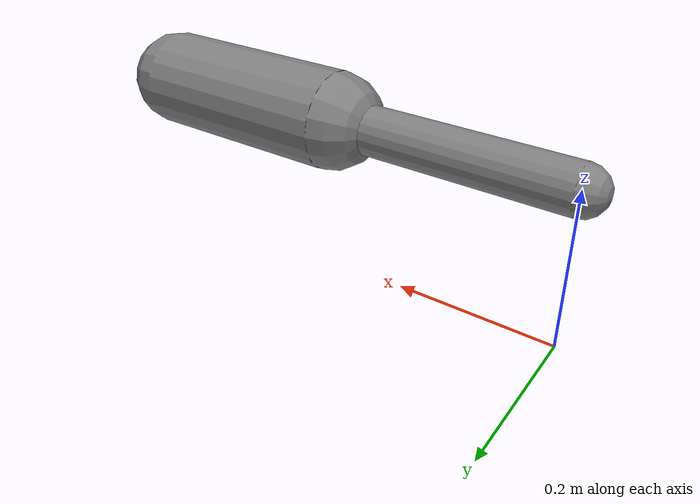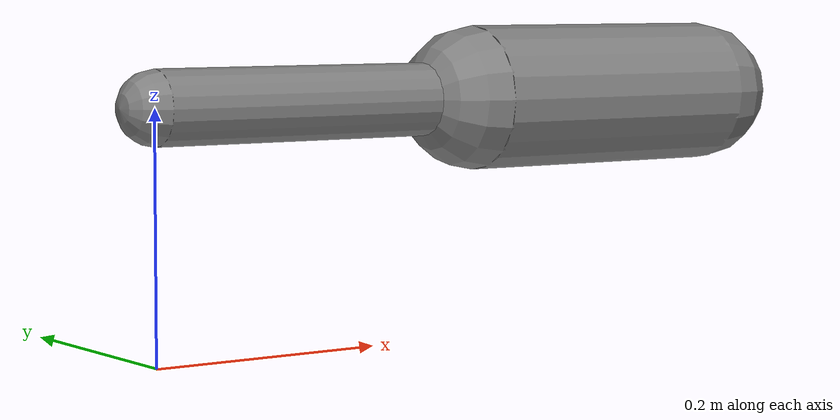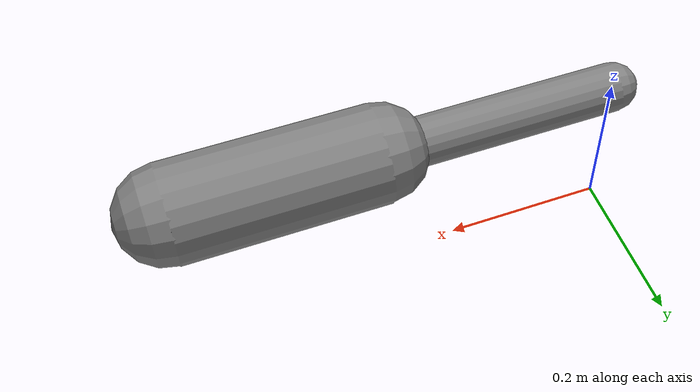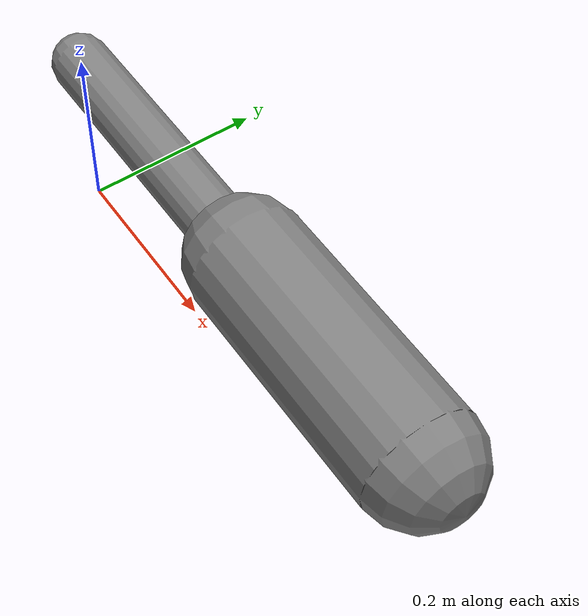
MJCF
<mujoco model="arm2">
  <compiler angle="radian" autolimits="true"/>
  <default>
    <joint type="hinge" axis="0 0 1" damping="0.5" range="-1 1"/>
    <geom type="capsule" size="0.03" density="1000"/>
    <default class="heavy">
      <geom size="0.06" density="2000"/>
      <joint damping="5"/>
    </default>
  </default>
  <worldbody>
    <body name="link1" pos="0 0 0.2">
      <joint name="j1"/>
      <geom name="g1" fromto="0 0 0 0.3 0 0"/>
      <body name="link2" pos="0.3 0 0" childclass="heavy">
        <joint name="j2" damping="1"/>
        <geom name="g2" fromto="0 0 0 0.25 0 0"/>
        <geom name="g3" class="main" type="sphere"/>
      </body>
    </body>
  </worldbody>
</mujoco>
